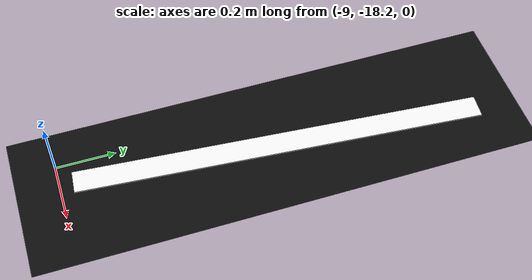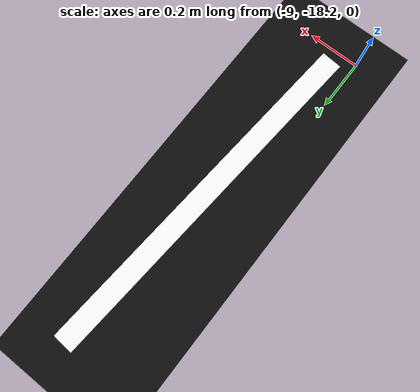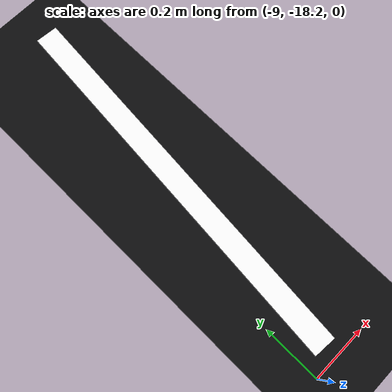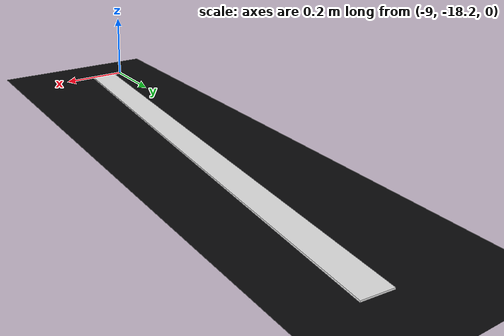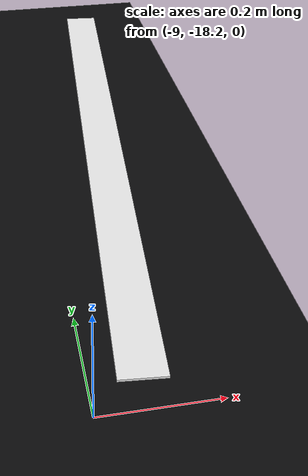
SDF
<sdf version="1.10">
 <world name="silverstone">
  <model name="ground">
   <static>true</static>
   <link name="ground_link">
    <collision name="ground_collision">
     <geometry><plane><normal>0 0 1</normal><size>160 160</size></plane></geometry>
    </collision>
    <visual name="ground_visual">
     <geometry><plane><normal>0 0 1</normal><size>160 160</size></plane></geometry>
     <material><ambient>0.045 0.045 0.050 1</ambient><diffuse>0.045 0.045 0.050 1</diffuse></material>
    </visual>
   </link>
  </model>
  <model name="start_line">
   <static>true</static>
   <link name="start_line_link">
    <visual name="start_bar">
     <pose>-8.86048 -17.46781 0.01400 0 0 -0.0822501</pose>
     <geometry><box><size>0.08 1.38000 0.004</size></box></geometry>
     <material><ambient>0.95 0.95 0.95 1</ambient><diffuse>0.95 0.95 0.95 1</diffuse></material>
    </visual>
   </link>
  </model>
 </world>
</sdf>
